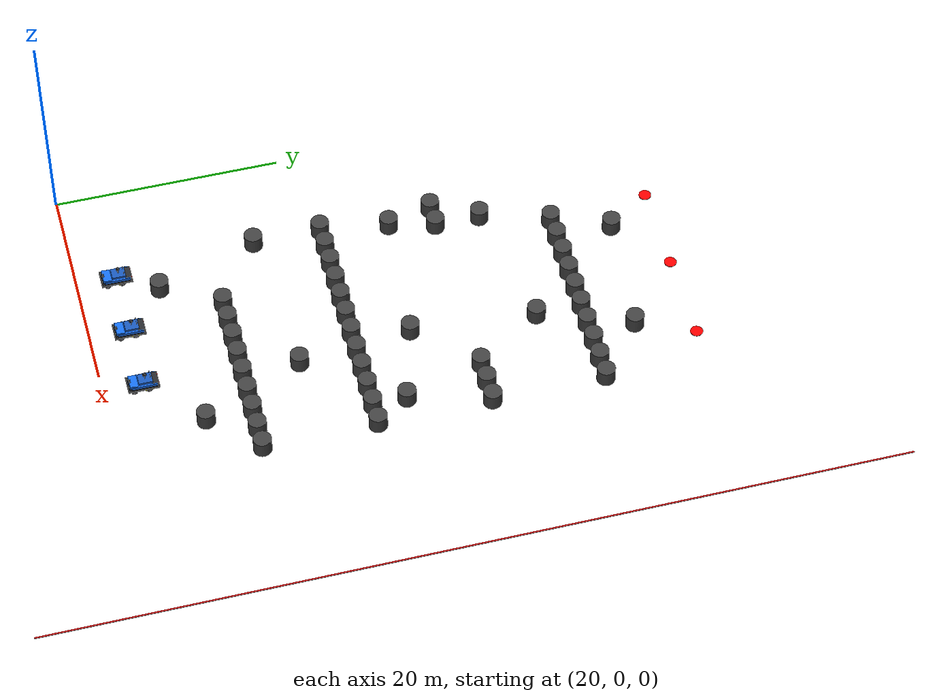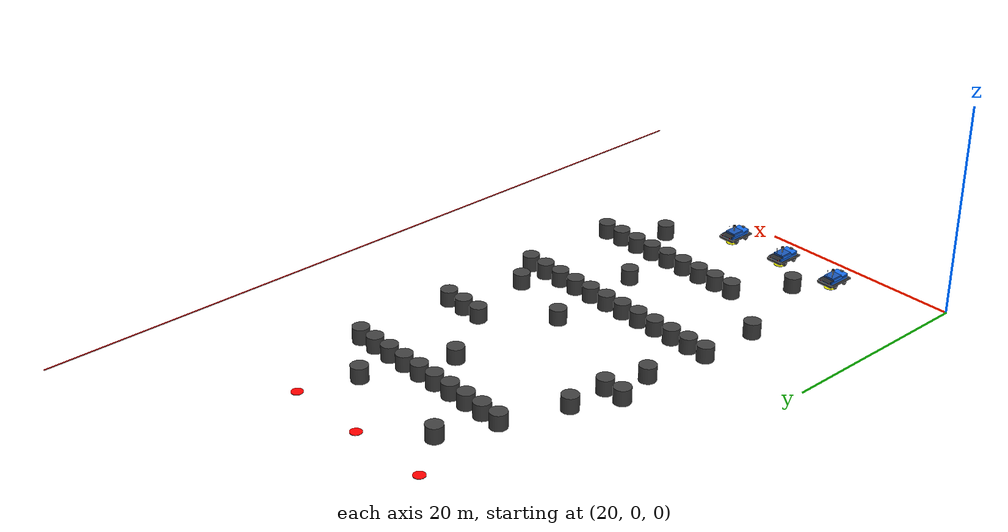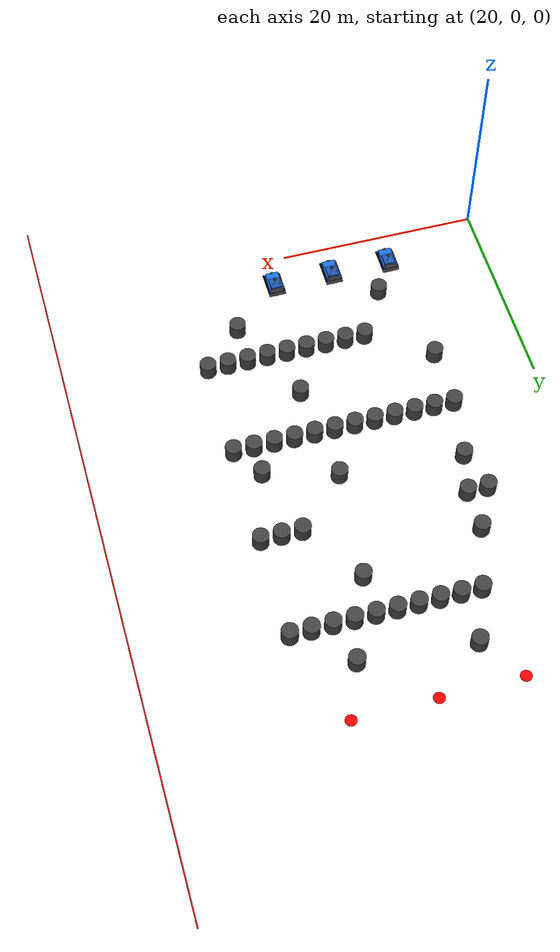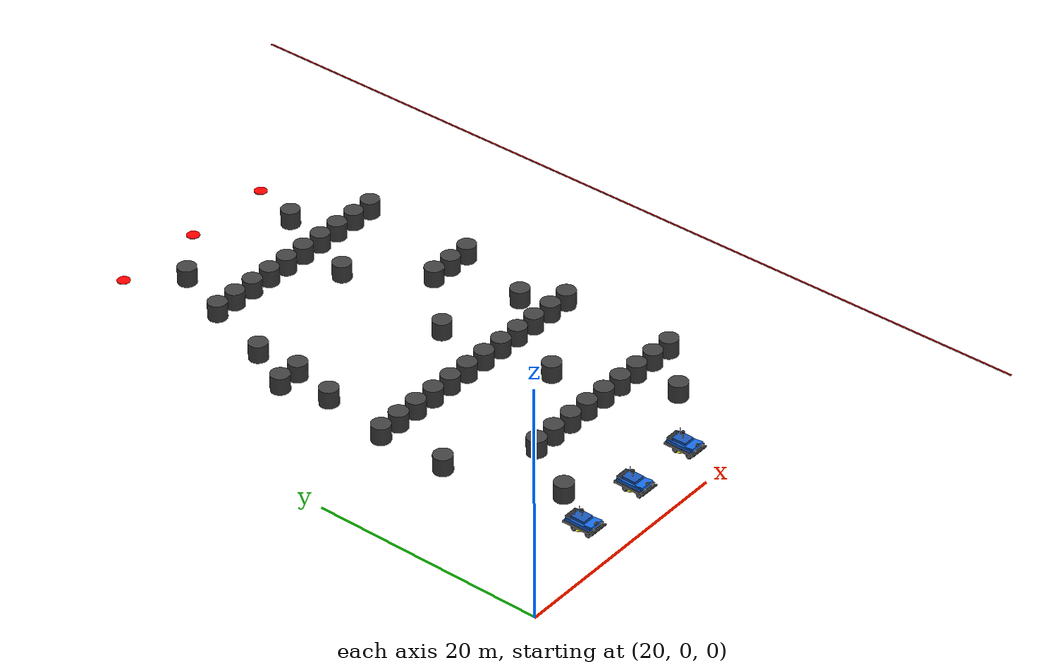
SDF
<sdf version="1.10">
 <world name="paper_corridors_6ugv">
  <model name="boundary_east">
   <static>true</static>
   <pose>65.0 27.5 0.03 0 0 0</pose>
   <link name="link">
    <visual name="visual">
     <geometry><box><size>0.12 75.0 0.06</size></box></geometry>
     <material><ambient>0.85 0.1 0.1 1.0</ambient><diffuse>0.85 0.1 0.1 1.0</diffuse></material>
    </visual>
   </link>
  </model>
  <model name="obstacle_010">
   <static>true</static>
   <pose>35.0 12.0 0.75 0 0 0</pose>
   <link name="link">
    <collision name="collision">
     <geometry><cylinder><radius>0.8</radius><length>1.5</length></cylinder></geometry>
    </collision>
    <visual name="visual">
     <geometry><cylinder><radius>0.8</radius><length>1.5</length></cylinder></geometry>
     <material><ambient>0.25 0.25 0.25 1.0</ambient><diffuse>0.25 0.25 0.25 1.0</diffuse></material>
    </visual>
   </link>
  </model>
  <model name="obstacle_011">
   <static>true</static>
   <pose>37.0 12.0 0.75 0 0 0</pose>
   <link name="link">
    <collision name="collision">
     <geometry><cylinder><radius>0.8</radius><length>1.5</length></cylinder></geometry>
    </collision>
    <visual name="visual">
     <geometry><cylinder><radius>0.8</radius><length>1.5</length></cylinder></geometry>
     <material><ambient>0.25 0.25 0.25 1.0</ambient><diffuse>0.25 0.25 0.25 1.0</diffuse></material>
    </visual>
   </link>
  </model>
  <model name="obstacle_012">
   <static>true</static>
   <pose>39.0 12.0 0.75 0 0 0</pose>
   <link name="link">
    <collision name="collision">
     <geometry><cylinder><radius>0.8</radius><length>1.5</length></cylinder></geometry>
    </collision>
    <visual name="visual">
     <geometry><cylinder><radius>0.8</radius><length>1.5</length></cylinder></geometry>
     <material><ambient>0.25 0.25 0.25 1.0</ambient><diffuse>0.25 0.25 0.25 1.0</diffuse></material>
    </visual>
   </link>
  </model>
  <model name="obstacle_013">
   <static>true</static>
   <pose>41.0 12.0 0.75 0 0 0</pose>
   <link name="link">
    <collision name="collision">
     <geometry><cylinder><radius>0.8</radius><length>1.5</length></cylinder></geometry>
    </collision>
    <visual name="visual">
     <geometry><cylinder><radius>0.8</radius><length>1.5</length></cylinder></geometry>
     <material><ambient>0.25 0.25 0.25 1.0</ambient><diffuse>0.25 0.25 0.25 1.0</diffuse></material>
    </visual>
   </link>
  </model>
  <model name="obstacle_014">
   <static>true</static>
   <pose>43.0 12.0 0.75 0 0 0</pose>
   <link name="link">
    <collision name="collision">
     <geometry><cylinder><radius>0.8</radius><length>1.5</length></cylinder></geometry>
    </collision>
    <visual name="visual">
     <geometry><cylinder><radius>0.8</radius><length>1.5</length></cylinder></geometry>
     <material><ambient>0.25 0.25 0.25 1.0</ambient><diffuse>0.25 0.25 0.25 1.0</diffuse></material>
    </visual>
   </link>
  </model>
  <model name="obstacle_015">
   <static>true</static>
   <pose>45.0 12.0 0.75 0 0 0</pose>
   <link name="link">
    <collision name="collision">
     <geometry><cylinder><radius>0.8</radius><length>1.5</length></cylinder></geometry>
    </collision>
    <visual name="visual">
     <geometry><cylinder><radius>0.8</radius><length>1.5</length></cylinder></geometry>
     <material><ambient>0.25 0.25 0.25 1.0</ambient><diffuse>0.25 0.25 0.25 1.0</diffuse></material>
    </visual>
   </link>
  </model>
  <model name="obstacle_016">
   <static>true</static>
   <pose>47.0 12.0 0.75 0 0 0</pose>
   <link name="link">
    <collision name="collision">
     <geometry><cylinder><radius>0.8</radius><length>1.5</length></cylinder></geometry>
    </collision>
    <visual name="visual">
     <geometry><cylinder><radius>0.8</radius><length>1.5</length></cylinder></geometry>
     <material><ambient>0.25 0.25 0.25 1.0</ambient><diffuse>0.25 0.25 0.25 1.0</diffuse></material>
    </visual>
   </link>
  </model>
  <model name="obstacle_017">
   <static>true</static>
   <pose>49.0 12.0 0.75 0 0 0</pose>
   <link name="link">
    <collision name="collision">
     <geometry><cylinder><radius>0.8</radius><length>1.5</length></cylinder></geometry>
    </collision>
    <visual name="visual">
     <geometry><cylinder><radius>0.8</radius><length>1.5</length></cylinder></geometry>
     <material><ambient>0.25 0.25 0.25 1.0</ambient><diffuse>0.25 0.25 0.25 1.0</diffuse></material>
    </visual>
   </link>
  </model>
  <model name="obstacle_018">
   <static>true</static>
   <pose>51.0 12.0 0.75 0 0 0</pose>
   <link name="link">
    <collision name="collision">
     <geometry><cylinder><radius>0.8</radius><length>1.5</length></cylinder></geometry>
    </collision>
    <visual name="visual">
     <geometry><cylinder><radius>0.8</radius><length>1.5</length></cylinder></geometry>
     <material><ambient>0.25 0.25 0.25 1.0</ambient><diffuse>0.25 0.25 0.25 1.0</diffuse></material>
    </visual>
   </link>
  </model>
  <model name="obstacle_024">
   <static>true</static>
   <pose>29.0 22.0 0.75 0 0 0</pose>
   <link name="link">
    <collision name="collision">
     <geometry><cylinder><radius>0.8</radius><length>1.5</length></cylinder></geometry>
    </collision>
    <visual name="visual">
     <geometry><cylinder><radius>0.8</radius><length>1.5</length></cylinder></geometry>
     <material><ambient>0.25 0.25 0.25 1.0</ambient><diffuse>0.25 0.25 0.25 1.0</diffuse></material>
    </visual>
   </link>
  </model>
  <model name="obstacle_025">
   <static>true</static>
   <pose>31.0 22.0 0.75 0 0 0</pose>
   <link name="link">
    <collision name="collision">
     <geometry><cylinder><radius>0.8</radius><length>1.5</length></cylinder></geometry>
    </collision>
    <visual name="visual">
     <geometry><cylinder><radius>0.8</radius><length>1.5</length></cylinder></geometry>
     <material><ambient>0.25 0.25 0.25 1.0</ambient><diffuse>0.25 0.25 0.25 1.0</diffuse></material>
    </visual>
   </link>
  </model>
  <model name="obstacle_026">
   <static>true</static>
   <pose>33.0 22.0 0.75 0 0 0</pose>
   <link name="link">
    <collision name="collision">
     <geometry><cylinder><radius>0.8</radius><length>1.5</length></cylinder></geometry>
    </collision>
    <visual name="visual">
     <geometry><cylinder><radius>0.8</radius><length>1.5</length></cylinder></geometry>
     <material><ambient>0.25 0.25 0.25 1.0</ambient><diffuse>0.25 0.25 0.25 1.0</diffuse></material>
    </visual>
   </link>
  </model>
  <model name="obstacle_027">
   <static>true</static>
   <pose>35.0 22.0 0.75 0 0 0</pose>
   <link name="link">
    <collision name="collision">
     <geometry><cylinder><radius>0.8</radius><length>1.5</length></cylinder></geometry>
    </collision>
    <visual name="visual">
     <geometry><cylinder><radius>0.8</radius><length>1.5</length></cylinder></geometry>
     <material><ambient>0.25 0.25 0.25 1.0</ambient><diffuse>0.25 0.25 0.25 1.0</diffuse></material>
    </visual>
   </link>
  </model>
  <model name="obstacle_028">
   <static>true</static>
   <pose>37.0 22.0 0.75 0 0 0</pose>
   <link name="link">
    <collision name="collision">
     <geometry><cylinder><radius>0.8</radius><length>1.5</length></cylinder></geometry>
    </collision>
    <visual name="visual">
     <geometry><cylinder><radius>0.8</radius><length>1.5</length></cylinder></geometry>
     <material><ambient>0.25 0.25 0.25 1.0</ambient><diffuse>0.25 0.25 0.25 1.0</diffuse></material>
    </visual>
   </link>
  </model>
  <model name="obstacle_029">
   <static>true</static>
   <pose>39.0 22.0 0.75 0 0 0</pose>
   <link name="link">
    <collision name="collision">
     <geometry><cylinder><radius>0.8</radius><length>1.5</length></cylinder></geometry>
    </collision>
    <visual name="visual">
     <geometry><cylinder><radius>0.8</radius><length>1.5</length></cylinder></geometry>
     <material><ambient>0.25 0.25 0.25 1.0</ambient><diffuse>0.25 0.25 0.25 1.0</diffuse></material>
    </visual>
   </link>
  </model>
  <model name="obstacle_030">
   <static>true</static>
   <pose>41.0 22.0 0.75 0 0 0</pose>
   <link name="link">
    <collision name="collision">
     <geometry><cylinder><radius>0.8</radius><length>1.5</length></cylinder></geometry>
    </collision>
    <visual name="visual">
     <geometry><cylinder><radius>0.8</radius><length>1.5</length></cylinder></geometry>
     <material><ambient>0.25 0.25 0.25 1.0</ambient><diffuse>0.25 0.25 0.25 1.0</diffuse></material>
    </visual>
   </link>
  </model>
  <model name="obstacle_031">
   <static>true</static>
   <pose>43.0 22.0 0.75 0 0 0</pose>
   <link name="link">
    <collision name="collision">
     <geometry><cylinder><radius>0.8</radius><length>1.5</length></cylinder></geometry>
    </collision>
    <visual name="visual">
     <geometry><cylinder><radius>0.8</radius><length>1.5</length></cylinder></geometry>
     <material><ambient>0.25 0.25 0.25 1.0</ambient><diffuse>0.25 0.25 0.25 1.0</diffuse></material>
    </visual>
   </link>
  </model>
  <model name="obstacle_032">
   <static>true</static>
   <pose>45.0 22.0 0.75 0 0 0</pose>
   <link name="link">
    <collision name="collision">
     <geometry><cylinder><radius>0.8</radius><length>1.5</length></cylinder></geometry>
    </collision>
    <visual name="visual">
     <geometry><cylinder><radius>0.8</radius><length>1.5</length></cylinder></geometry>
     <material><ambient>0.25 0.25 0.25 1.0</ambient><diffuse>0.25 0.25 0.25 1.0</diffuse></material>
    </visual>
   </link>
  </model>
  <model name="obstacle_033">
   <static>true</static>
   <pose>47.0 22.0 0.75 0 0 0</pose>
   <link name="link">
    <collision name="collision">
     <geometry><cylinder><radius>0.8</radius><length>1.5</length></cylinder></geometry>
    </collision>
    <visual name="visual">
     <geometry><cylinder><radius>0.8</radius><length>1.5</length></cylinder></geometry>
     <material><ambient>0.25 0.25 0.25 1.0</ambient><diffuse>0.25 0.25 0.25 1.0</diffuse></material>
    </visual>
   </link>
  </model>
  <model name="obstacle_034">
   <static>true</static>
   <pose>49.0 22.0 0.75 0 0 0</pose>
   <link name="link">
    <collision name="collision">
     <geometry><cylinder><radius>0.8</radius><length>1.5</length></cylinder></geometry>
    </collision>
    <visual name="visual">
     <geometry><cylinder><radius>0.8</radius><length>1.5</length></cylinder></geometry>
     <material><ambient>0.25 0.25 0.25 1.0</ambient><diffuse>0.25 0.25 0.25 1.0</diffuse></material>
    </visual>
   </link>
  </model>
  <model name="obstacle_035">
   <static>true</static>
   <pose>51.0 22.0 0.75 0 0 0</pose>
   <link name="link">
    <collision name="collision">
     <geometry><cylinder><radius>0.8</radius><length>1.5</length></cylinder></geometry>
    </collision>
    <visual name="visual">
     <geometry><cylinder><radius>0.8</radius><length>1.5</length></cylinder></geometry>
     <material><ambient>0.25 0.25 0.25 1.0</ambient><diffuse>0.25 0.25 0.25 1.0</diffuse></material>
    </visual>
   </link>
  </model>
  <model name="obstacle_049">
   <static>true</static>
   <pose>29.0 32.0 0.75 0 0 0</pose>
   <link name="link">
    <collision name="collision">
     <geometry><cylinder><radius>0.8</radius><length>1.5</length></cylinder></geometry>
    </collision>
    <visual name="visual">
     <geometry><cylinder><radius>0.8</radius><length>1.5</length></cylinder></geometry>
     <material><ambient>0.25 0.25 0.25 1.0</ambient><diffuse>0.25 0.25 0.25 1.0</diffuse></material>
    </visual>
   </link>
  </model>
  <model name="obstacle_050">
   <static>true</static>
   <pose>31.0 32.0 0.75 0 0 0</pose>
   <link name="link">
    <collision name="collision">
     <geometry><cylinder><radius>0.8</radius><length>1.5</length></cylinder></geometry>
    </collision>
    <visual name="visual">
     <geometry><cylinder><radius>0.8</radius><length>1.5</length></cylinder></geometry>
     <material><ambient>0.25 0.25 0.25 1.0</ambient><diffuse>0.25 0.25 0.25 1.0</diffuse></material>
    </visual>
   </link>
  </model>
  <model name="obstacle_051">
   <static>true</static>
   <pose>47.0 32.0 0.75 0 0 0</pose>
   <link name="link">
    <collision name="collision">
     <geometry><cylinder><radius>0.8</radius><length>1.5</length></cylinder></geometry>
    </collision>
    <visual name="visual">
     <geometry><cylinder><radius>0.8</radius><length>1.5</length></cylinder></geometry>
     <material><ambient>0.25 0.25 0.25 1.0</ambient><diffuse>0.25 0.25 0.25 1.0</diffuse></material>
    </visual>
   </link>
  </model>
  <model name="obstacle_052">
   <static>true</static>
   <pose>49.0 32.0 0.75 0 0 0</pose>
   <link name="link">
    <collision name="collision">
     <geometry><cylinder><radius>0.8</radius><length>1.5</length></cylinder></geometry>
    </collision>
    <visual name="visual">
     <geometry><cylinder><radius>0.8</radius><length>1.5</length></cylinder></geometry>
     <material><ambient>0.25 0.25 0.25 1.0</ambient><diffuse>0.25 0.25 0.25 1.0</diffuse></material>
    </visual>
   </link>
  </model>
  <model name="obstacle_053">
   <static>true</static>
   <pose>51.0 32.0 0.75 0 0 0</pose>
   <link name="link">
    <collision name="collision">
     <geometry><cylinder><radius>0.8</radius><length>1.5</length></cylinder></geometry>
    </collision>
    <visual name="visual">
     <geometry><cylinder><radius>0.8</radius><length>1.5</length></cylinder></geometry>
     <material><ambient>0.25 0.25 0.25 1.0</ambient><diffuse>0.25 0.25 0.25 1.0</diffuse></material>
    </visual>
   </link>
  </model>
  <model name="obstacle_061">
   <static>true</static>
   <pose>33.0 42.0 0.75 0 0 0</pose>
   <link name="link">
    <collision name="collision">
     <geometry><cylinder><radius>0.8</radius><length>1.5</length></cylinder></geometry>
    </collision>
    <visual name="visual">
     <geometry><cylinder><radius>0.8</radius><length>1.5</length></cylinder></geometry>
     <material><ambient>0.25 0.25 0.25 1.0</ambient><diffuse>0.25 0.25 0.25 1.0</diffuse></material>
    </visual>
   </link>
  </model>
  <model name="obstacle_062">
   <static>true</static>
   <pose>35.0 42.0 0.75 0 0 0</pose>
   <link name="link">
    <collision name="collision">
     <geometry><cylinder><radius>0.8</radius><length>1.5</length></cylinder></geometry>
    </collision>
    <visual name="visual">
     <geometry><cylinder><radius>0.8</radius><length>1.5</length></cylinder></geometry>
     <material><ambient>0.25 0.25 0.25 1.0</ambient><diffuse>0.25 0.25 0.25 1.0</diffuse></material>
    </visual>
   </link>
  </model>
  <model name="obstacle_063">
   <static>true</static>
   <pose>37.0 42.0 0.75 0 0 0</pose>
   <link name="link">
    <collision name="collision">
     <geometry><cylinder><radius>0.8</radius><length>1.5</length></cylinder></geometry>
    </collision>
    <visual name="visual">
     <geometry><cylinder><radius>0.8</radius><length>1.5</length></cylinder></geometry>
     <material><ambient>0.25 0.25 0.25 1.0</ambient><diffuse>0.25 0.25 0.25 1.0</diffuse></material>
    </visual>
   </link>
  </model>
  <model name="obstacle_064">
   <static>true</static>
   <pose>39.0 42.0 0.75 0 0 0</pose>
   <link name="link">
    <collision name="collision">
     <geometry><cylinder><radius>0.8</radius><length>1.5</length></cylinder></geometry>
    </collision>
    <visual name="visual">
     <geometry><cylinder><radius>0.8</radius><length>1.5</length></cylinder></geometry>
     <material><ambient>0.25 0.25 0.25 1.0</ambient><diffuse>0.25 0.25 0.25 1.0</diffuse></material>
    </visual>
   </link>
  </model>
  <model name="obstacle_065">
   <static>true</static>
   <pose>41.0 42.0 0.75 0 0 0</pose>
   <link name="link">
    <collision name="collision">
     <geometry><cylinder><radius>0.8</radius><length>1.5</length></cylinder></geometry>
    </collision>
    <visual name="visual">
     <geometry><cylinder><radius>0.8</radius><length>1.5</length></cylinder></geometry>
     <material><ambient>0.25 0.25 0.25 1.0</ambient><diffuse>0.25 0.25 0.25 1.0</diffuse></material>
    </visual>
   </link>
  </model>
  <model name="obstacle_066">
   <static>true</static>
   <pose>43.0 42.0 0.75 0 0 0</pose>
   <link name="link">
    <collision name="collision">
     <geometry><cylinder><radius>0.8</radius><length>1.5</length></cylinder></geometry>
    </collision>
    <visual name="visual">
     <geometry><cylinder><radius>0.8</radius><length>1.5</length></cylinder></geometry>
     <material><ambient>0.25 0.25 0.25 1.0</ambient><diffuse>0.25 0.25 0.25 1.0</diffuse></material>
    </visual>
   </link>
  </model>
  <model name="obstacle_067">
   <static>true</static>
   <pose>45.0 42.0 0.75 0 0 0</pose>
   <link name="link">
    <collision name="collision">
     <geometry><cylinder><radius>0.8</radius><length>1.5</length></cylinder></geometry>
    </collision>
    <visual name="visual">
     <geometry><cylinder><radius>0.8</radius><length>1.5</length></cylinder></geometry>
     <material><ambient>0.25 0.25 0.25 1.0</ambient><diffuse>0.25 0.25 0.25 1.0</diffuse></material>
    </visual>
   </link>
  </model>
  <model name="obstacle_068">
   <static>true</static>
   <pose>47.0 42.0 0.75 0 0 0</pose>
   <link name="link">
    <collision name="collision">
     <geometry><cylinder><radius>0.8</radius><length>1.5</length></cylinder></geometry>
    </collision>
    <visual name="visual">
     <geometry><cylinder><radius>0.8</radius><length>1.5</length></cylinder></geometry>
     <material><ambient>0.25 0.25 0.25 1.0</ambient><diffuse>0.25 0.25 0.25 1.0</diffuse></material>
    </visual>
   </link>
  </model>
  <model name="obstacle_069">
   <static>true</static>
   <pose>49.0 42.0 0.75 0 0 0</pose>
   <link name="link">
    <collision name="collision">
     <geometry><cylinder><radius>0.8</radius><length>1.5</length></cylinder></geometry>
    </collision>
    <visual name="visual">
     <geometry><cylinder><radius>0.8</radius><length>1.5</length></cylinder></geometry>
     <material><ambient>0.25 0.25 0.25 1.0</ambient><diffuse>0.25 0.25 0.25 1.0</diffuse></material>
    </visual>
   </link>
  </model>
  <model name="obstacle_070">
   <static>true</static>
   <pose>51.0 42.0 0.75 0 0 0</pose>
   <link name="link">
    <collision name="collision">
     <geometry><cylinder><radius>0.8</radius><length>1.5</length></cylinder></geometry>
    </collision>
    <visual name="visual">
     <geometry><cylinder><radius>0.8</radius><length>1.5</length></cylinder></geometry>
     <material><ambient>0.25 0.25 0.25 1.0</ambient><diffuse>0.25 0.25 0.25 1.0</diffuse></material>
    </visual>
   </link>
  </model>
  <model name="obstacle_073">
   <static>true</static>
   <pose>32.0 7.0 0.75 0 0 0</pose>
   <link name="link">
    <collision name="collision">
     <geometry><cylinder><radius>0.8</radius><length>1.5</length></cylinder></geometry>
    </collision>
    <visual name="visual">
     <geometry><cylinder><radius>0.8</radius><length>1.5</length></cylinder></geometry>
     <material><ambient>0.25 0.25 0.25 1.0</ambient><diffuse>0.25 0.25 0.25 1.0</diffuse></material>
    </visual>
   </link>
  </model>
  <model name="obstacle_074">
   <static>true</static>
   <pose>47.0 8.0 0.75 0 0 0</pose>
   <link name="link">
    <collision name="collision">
     <geometry><cylinder><radius>0.8</radius><length>1.5</length></cylinder></geometry>
    </collision>
    <visual name="visual">
     <geometry><cylinder><radius>0.8</radius><length>1.5</length></cylinder></geometry>
     <material><ambient>0.25 0.25 0.25 1.0</ambient><diffuse>0.25 0.25 0.25 1.0</diffuse></material>
    </visual>
   </link>
  </model>
  <model name="obstacle_077">
   <static>true</static>
   <pose>29.0 16.0 0.75 0 0 0</pose>
   <link name="link">
    <collision name="collision">
     <geometry><cylinder><radius>0.8</radius><length>1.5</length></cylinder></geometry>
    </collision>
    <visual name="visual">
     <geometry><cylinder><radius>0.8</radius><length>1.5</length></cylinder></geometry>
     <material><ambient>0.25 0.25 0.25 1.0</ambient><diffuse>0.25 0.25 0.25 1.0</diffuse></material>
    </visual>
   </link>
  </model>
  <model name="obstacle_078">
   <static>true</static>
   <pose>43.0 17.0 0.75 0 0 0</pose>
   <link name="link">
    <collision name="collision">
     <geometry><cylinder><radius>0.8</radius><length>1.5</length></cylinder></geometry>
    </collision>
    <visual name="visual">
     <geometry><cylinder><radius>0.8</radius><length>1.5</length></cylinder></geometry>
     <material><ambient>0.25 0.25 0.25 1.0</ambient><diffuse>0.25 0.25 0.25 1.0</diffuse></material>
    </visual>
   </link>
  </model>
  <model name="obstacle_081">
   <static>true</static>
   <pose>30.0 28.0 0.75 0 0 0</pose>
   <link name="link">
    <collision name="collision">
     <geometry><cylinder><radius>0.8</radius><length>1.5</length></cylinder></geometry>
    </collision>
    <visual name="visual">
     <geometry><cylinder><radius>0.8</radius><length>1.5</length></cylinder></geometry>
     <material><ambient>0.25 0.25 0.25 1.0</ambient><diffuse>0.25 0.25 0.25 1.0</diffuse></material>
    </visual>
   </link>
  </model>
  <model name="obstacle_082">
   <static>true</static>
   <pose>42.0 27.0 0.75 0 0 0</pose>
   <link name="link">
    <collision name="collision">
     <geometry><cylinder><radius>0.8</radius><length>1.5</length></cylinder></geometry>
    </collision>
    <visual name="visual">
     <geometry><cylinder><radius>0.8</radius><length>1.5</length></cylinder></geometry>
     <material><ambient>0.25 0.25 0.25 1.0</ambient><diffuse>0.25 0.25 0.25 1.0</diffuse></material>
    </visual>
   </link>
  </model>
  <model name="obstacle_083">
   <static>true</static>
   <pose>49.0 25.0 0.75 0 0 0</pose>
   <link name="link">
    <collision name="collision">
     <geometry><cylinder><radius>0.8</radius><length>1.5</length></cylinder></geometry>
    </collision>
    <visual name="visual">
     <geometry><cylinder><radius>0.8</radius><length>1.5</length></cylinder></geometry>
     <material><ambient>0.25 0.25 0.25 1.0</ambient><diffuse>0.25 0.25 0.25 1.0</diffuse></material>
    </visual>
   </link>
  </model>
  <model name="obstacle_086">
   <static>true</static>
   <pose>31.0 36.0 0.75 0 0 0</pose>
   <link name="link">
    <collision name="collision">
     <geometry><cylinder><radius>0.8</radius><length>1.5</length></cylinder></geometry>
    </collision>
    <visual name="visual">
     <geometry><cylinder><radius>0.8</radius><length>1.5</length></cylinder></geometry>
     <material><ambient>0.25 0.25 0.25 1.0</ambient><diffuse>0.25 0.25 0.25 1.0</diffuse></material>
    </visual>
   </link>
  </model>
  <model name="obstacle_087">
   <static>true</static>
   <pose>43.0 38.0 0.75 0 0 0</pose>
   <link name="link">
    <collision name="collision">
     <geometry><cylinder><radius>0.8</radius><length>1.5</length></cylinder></geometry>
    </collision>
    <visual name="visual">
     <geometry><cylinder><radius>0.8</radius><length>1.5</length></cylinder></geometry>
     <material><ambient>0.25 0.25 0.25 1.0</ambient><diffuse>0.25 0.25 0.25 1.0</diffuse></material>
    </visual>
   </link>
  </model>
  <model name="obstacle_090">
   <static>true</static>
   <pose>35.0 47.0 0.75 0 0 0</pose>
   <link name="link">
    <collision name="collision">
     <geometry><cylinder><radius>0.8</radius><length>1.5</length></cylinder></geometry>
    </collision>
    <visual name="visual">
     <geometry><cylinder><radius>0.8</radius><length>1.5</length></cylinder></geometry>
     <material><ambient>0.25 0.25 0.25 1.0</ambient><diffuse>0.25 0.25 0.25 1.0</diffuse></material>
    </visual>
   </link>
  </model>
  <model name="obstacle_091">
   <static>true</static>
   <pose>46.0 46.0 0.75 0 0 0</pose>
   <link name="link">
    <collision name="collision">
     <geometry><cylinder><radius>0.8</radius><length>1.5</length></cylinder></geometry>
    </collision>
    <visual name="visual">
     <geometry><cylinder><radius>0.8</radius><length>1.5</length></cylinder></geometry>
     <material><ambient>0.25 0.25 0.25 1.0</ambient><diffuse>0.25 0.25 0.25 1.0</diffuse></material>
    </visual>
   </link>
  </model>
  <model name="start_3">
   <static>true</static>
   <pose>30.0 4.0 0.025 0 0 0</pose>
   <link name="link">
    <visual name="visual">
     <geometry><cylinder><radius>0.55</radius><length>0.05</length></cylinder></geometry>
     <material><ambient>1.0 1.0 0.0 1.0</ambient><diffuse>1.0 1.0 0.0 1.0</diffuse></material>
    </visual>
   </link>
  </model>
  <model name="start_4">
   <static>true</static>
   <pose>36.0 4.0 0.025 0 0 0</pose>
   <link name="link">
    <visual name="visual">
     <geometry><cylinder><radius>0.55</radius><length>0.05</length></cylinder></geometry>
     <material><ambient>1.0 1.0 0.0 1.0</ambient><diffuse>1.0 1.0 0.0 1.0</diffuse></material>
    </visual>
   </link>
  </model>
  <model name="start_5">
   <static>true</static>
   <pose>42.0 4.0 0.025 0 0 0</pose>
   <link name="link">
    <visual name="visual">
     <geometry><cylinder><radius>0.55</radius><length>0.05</length></cylinder></geometry>
     <material><ambient>1.0 1.0 0.0 1.0</ambient><diffuse>1.0 1.0 0.0 1.0</diffuse></material>
    </visual>
   </link>
  </model>
  <model name="goal_3">
   <static>true</static>
   <pose>32.0 51.0 0.025 0 0 0</pose>
   <link name="link">
    <visual name="visual">
     <geometry><cylinder><radius>0.55</radius><length>0.05</length></cylinder></geometry>
     <material><ambient>1.0 0.0 0.0 1.0</ambient><diffuse>1.0 0.0 0.0 1.0</diffuse></material>
    </visual>
   </link>
  </model>
  <model name="goal_4">
   <static>true</static>
   <pose>40.0 51.0 0.025 0 0 0</pose>
   <link name="link">
    <visual name="visual">
     <geometry><cylinder><radius>0.55</radius><length>0.05</length></cylinder></geometry>
     <material><ambient>1.0 0.0 0.0 1.0</ambient><diffuse>1.0 0.0 0.0 1.0</diffuse></material>
    </visual>
   </link>
  </model>
  <model name="goal_5">
   <static>true</static>
   <pose>48.0 51.0 0.025 0 0 0</pose>
   <link name="link">
    <visual name="visual">
     <geometry><cylinder><radius>0.55</radius><length>0.05</length></cylinder></geometry>
     <material><ambient>1.0 0.0 0.0 1.0</ambient><diffuse>1.0 0.0 0.0 1.0</diffuse></material>
    </visual>
   </link>
  </model>
  <include><uri>model://ugv_4</uri><name>ugv_4</name><pose>30.0 4.0 0.05 0 0 -1.5708</pose></include>
  <include><uri>model://ugv_5</uri><name>ugv_5</name><pose>36.0 4.0 0.05 0 0 -1.5708</pose></include>
  <include><uri>model://ugv_6</uri><name>ugv_6</name><pose>42.0 4.0 0.05 0 0 -1.5708</pose></include>
 </world>
</sdf>
